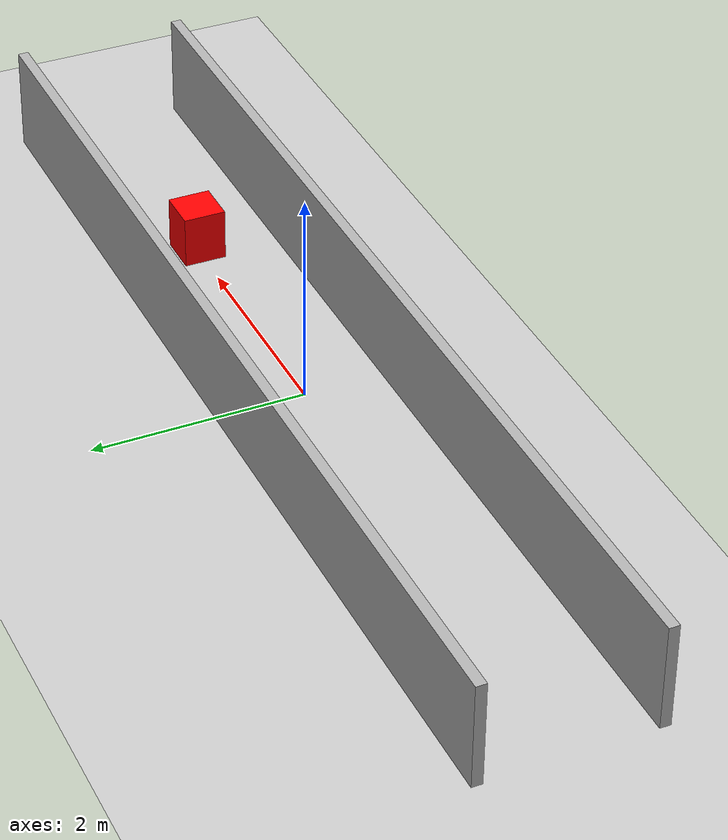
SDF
<?xml version="1.0" ?>
<sdf version="1.8">
  <world name="narrow_aisle">
    <physics name="1ms" type="ignored">
      <max_step_size>0.001</max_step_size>
      <real_time_factor>1.0</real_time_factor>
    </physics>

    <plugin filename="gz-sim-physics-system" name="gz::sim::systems::Physics" />
    <plugin filename="gz-sim-user-commands-system" name="gz::sim::systems::UserCommands" />
    <plugin filename="gz-sim-scene-broadcaster-system" name="gz::sim::systems::SceneBroadcaster" />
    <plugin filename="gz-sim-sensors-system" name="gz::sim::systems::Sensors">
      <render_engine>ogre2</render_engine>
    </plugin>

    <include>
      <uri>https://fuel.gazebosim.org/1.0/OpenRobotics/models/Sun</uri>
    </include>
    <include>
      <uri>https://fuel.gazebosim.org/1.0/OpenRobotics/models/Ground Plane</uri>
    </include>

    <model name="wall_left">
      <pose>0 0.8 0.5 0 0 0</pose>
      <static>true</static>
      <link name="link">
        <collision name="collision">
          <geometry><box><size>10 0.1 1</size></box></geometry>
        </collision>
        <visual name="visual">
          <geometry><box><size>10 0.1 1</size></box></geometry>
          <material>
            <ambient>0.7 0.7 0.7 1</ambient>
            <diffuse>0.7 0.7 0.7 1</diffuse>
            <specular>0.1 0.1 0.1 1</specular>
          </material>
        </visual>
      </link>
    </model>

    <model name="wall_right">
      <pose>0 -0.8 0.5 0 0 0</pose>
      <static>true</static>
      <link name="link">
        <collision name="collision">
          <geometry><box><size>10 0.1 1</size></box></geometry>
        </collision>
        <visual name="visual">
          <geometry><box><size>10 0.1 1</size></box></geometry>
          <material>
            <ambient>0.7 0.7 0.7 1</ambient>
            <diffuse>0.7 0.7 0.7 1</diffuse>
            <specular>0.1 0.1 0.1 1</specular>
          </material>
        </visual>
      </link>
    </model>

    <model name="obstacle_box">
      <pose>2.5 0 0.25 0 0 0</pose>
      <static>true</static>
      <link name="link">
        <collision name="collision">
          <geometry><box><size>0.4 0.4 0.5</size></box></geometry>
        </collision>
        <visual name="visual">
          <geometry><box><size>0.4 0.4 0.5</size></box></geometry>
          <material>
            <ambient>1 0 0 1</ambient>
            <diffuse>1 0 0 1</diffuse>
          </material>
        </visual>
      </link>
    </model>

  </world>
</sdf>
